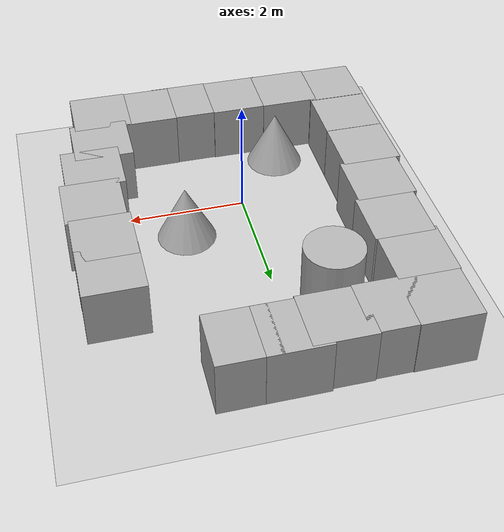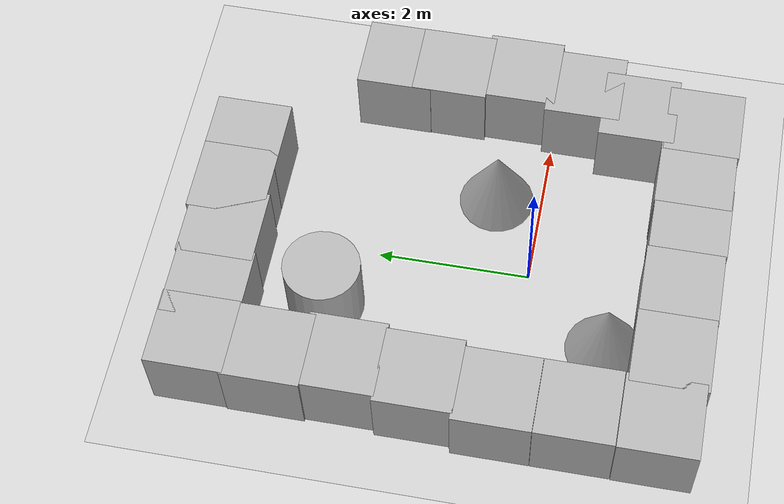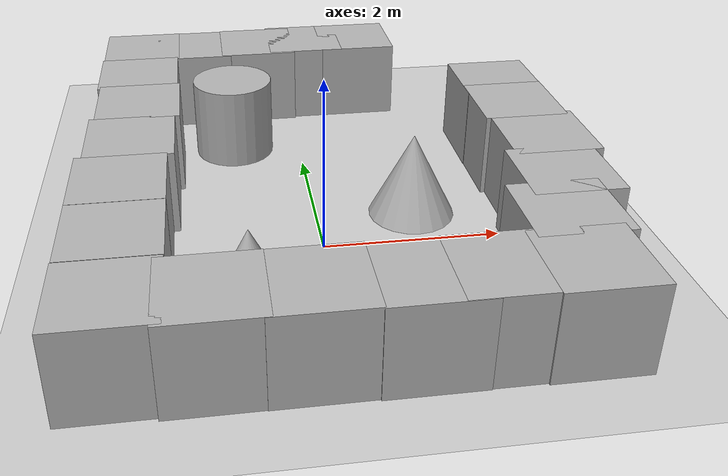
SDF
<sdf version='1.10'>
  <world name='empty'>
    <physics name='1ms' type='ignored'>
      <max_step_size>0.001</max_step_size>
      <real_time_factor>1</real_time_factor>
      <real_time_update_rate>1000</real_time_update_rate>
    </physics>
    <plugin name='gz::sim::systems::Physics' filename='gz-sim-physics-system'/>
    <plugin name='gz::sim::systems::UserCommands' filename='gz-sim-user-commands-system'/>
    <plugin name='gz::sim::systems::SceneBroadcaster' filename='gz-sim-scene-broadcaster-system'/>
    <plugin name='gz::sim::systems::Sensors' filename='gz-sim-sensors-system'>
      <render_engine>ogre2</render_engine>
    </plugin>
    <plugin name='gz::sim::systems::Contact' filename='gz-sim-contact-system'/>
    <gravity>0 0 -9.8000000000000007</gravity>
    <magnetic_field>5.5644999999999998e-06 2.2875799999999999e-05 -4.2388400000000002e-05</magnetic_field>
    <atmosphere type='adiabatic'/>
    <scene>
      <ambient>0.400000006 0.400000006 0.400000006 1</ambient>
      <background>0.699999988 0.699999988 0.699999988 1</background>
      <shadows>true</shadows>
    </scene>
    <model name='ground_plane'>
      <static>true</static>
      <link name='link'>
        <collision name='collision'>
          <geometry>
            <plane>
              <normal>0 0 1</normal>
              <size>100 100</size>
            </plane>
          </geometry>
          <surface>
            <friction>
              <ode/>
            </friction>
            <bounce/>
            <contact/>
          </surface>
        </collision>
        <visual name='visual'>
          <geometry>
            <plane>
              <normal>0 0 1</normal>
              <size>100 100</size>
            </plane>
          </geometry>
          <material>
            <ambient>0.800000012 0.800000012 0.800000012 1</ambient>
            <diffuse>0.800000012 0.800000012 0.800000012 1</diffuse>
            <specular>0.800000012 0.800000012 0.800000012 1</specular>
          </material>
        </visual>
        <pose>0 0 0 0 0 0</pose>
        <inertial>
          <pose>0 0 0 0 0 0</pose>
          <mass>1</mass>
          <inertia>
            <ixx>1</ixx>
            <ixy>0</ixy>
            <ixz>0</ixz>
            <iyy>1</iyy>
            <iyz>0</iyz>
            <izz>1</izz>
          </inertia>
        </inertial>
        <enable_wind>false</enable_wind>
      </link>
      <pose>0 0 0 0 0 0</pose>
      <self_collide>false</self_collide>
    </model>
    <model name='box'>
      <pose>2.5725061736939736 1.4457518876768178 0.50000041220665081 -9.6590048978576802e-07 4.7093544828262417e-08 2.375702925470449e-05</pose>
      <link name='box_link'>
        <inertial>
          <inertia>
            <ixx>0.16666</ixx>
            <ixy>0</ixy>
            <ixz>0</ixz>
            <iyy>0.16666</iyy>
            <iyz>0</iyz>
            <izz>0.16666</izz>
          </inertia>
          <mass>1</mass>
          <pose>0 0 0 0 0 0</pose>
        </inertial>
        <collision name='box_collision'>
          <geometry>
            <box>
              <size>1 1 1</size>
            </box>
          </geometry>
          <surface>
            <friction>
              <ode/>
            </friction>
            <bounce/>
            <contact/>
          </surface>
        </collision>
        <visual name='box_visual'>
          <geometry>
            <box>
              <size>1 1 1</size>
            </box>
          </geometry>
          <material>
            <ambient>0.300000012 0.300000012 0.300000012 1</ambient>
            <diffuse>0.699999988 0.699999988 0.699999988 1</diffuse>
            <specular>1 1 1 1</specular>
          </material>
        </visual>
        <pose>0 0 0 0 0 0</pose>
        <enable_wind>false</enable_wind>
      </link>
      <static>false</static>
      <self_collide>false</self_collide>
    </model>
    <model name='box_0'>
      <pose>2.6260531869661885 0.52042703384200117 0.50000691690781263 -1.5759303909476895e-05 -5.1008743345729587e-07 0.00010748436894233651</pose>
      <link name='box_link'>
        <inertial>
          <inertia>
            <ixx>0.16666</ixx>
            <ixy>0</ixy>
            <ixz>0</ixz>
            <iyy>0.16666</iyy>
            <iyz>0</iyz>
            <izz>0.16666</izz>
          </inertia>
          <mass>1</mass>
          <pose>0 0 0 0 0 0</pose>
        </inertial>
        <collision name='box_collision'>
          <geometry>
            <box>
              <size>1 1 1</size>
            </box>
          </geometry>
          <surface>
            <friction>
              <ode/>
            </friction>
            <bounce/>
            <contact/>
          </surface>
        </collision>
        <visual name='box_visual'>
          <geometry>
            <box>
              <size>1 1 1</size>
            </box>
          </geometry>
          <material>
            <ambient>0.300000012 0.300000012 0.300000012 1</ambient>
            <diffuse>0.699999988 0.699999988 0.699999988 1</diffuse>
            <specular>1 1 1 1</specular>
          </material>
        </visual>
        <pose>0 0 0 0 0 0</pose>
        <enable_wind>false</enable_wind>
      </link>
      <static>false</static>
      <self_collide>false</self_collide>
    </model>
    <model name='box_1'>
      <pose>2.5200556940294301 -0.3615242999807729 0.50000839409337294 -7.7652859270677727e-07 1.7941993697487484e-05 0.00010371675882942519</pose>
      <link name='box_link'>
        <inertial>
          <inertia>
            <ixx>0.16666</ixx>
            <ixy>0</ixy>
            <ixz>0</ixz>
            <iyy>0.16666</iyy>
            <iyz>0</iyz>
            <izz>0.16666</izz>
          </inertia>
          <mass>1</mass>
          <pose>0 0 0 0 0 0</pose>
        </inertial>
        <collision name='box_collision'>
          <geometry>
            <box>
              <size>1 1 1</size>
            </box>
          </geometry>
          <surface>
            <friction>
              <ode/>
            </friction>
            <bounce/>
            <contact/>
          </surface>
        </collision>
        <visual name='box_visual'>
          <geometry>
            <box>
              <size>1 1 1</size>
            </box>
          </geometry>
          <material>
            <ambient>0.300000012 0.300000012 0.300000012 1</ambient>
            <diffuse>0.699999988 0.699999988 0.699999988 1</diffuse>
            <specular>1 1 1 1</specular>
          </material>
        </visual>
        <pose>0 0 0 0 0 0</pose>
        <enable_wind>false</enable_wind>
      </link>
      <static>false</static>
      <self_collide>false</self_collide>
    </model>
    <model name='box_2'>
      <pose>2.2773920191922952 -1.1185019138005849 0.50000856466239274 6.8722299372051875e-06 1.1611866966727803e-05 0.00011499491917116678</pose>
      <link name='box_link'>
        <inertial>
          <inertia>
            <ixx>0.16666</ixx>
            <ixy>0</ixy>
            <ixz>0</ixz>
            <iyy>0.16666</iyy>
            <iyz>0</iyz>
            <izz>0.16666</izz>
          </inertia>
          <mass>1</mass>
          <pose>0 0 0 0 0 0</pose>
        </inertial>
        <collision name='box_collision'>
          <geometry>
            <box>
              <size>1 1 1</size>
            </box>
          </geometry>
          <surface>
            <friction>
              <ode/>
            </friction>
            <bounce/>
            <contact/>
          </surface>
        </collision>
        <visual name='box_visual'>
          <geometry>
            <box>
              <size>1 1 1</size>
            </box>
          </geometry>
          <material>
            <ambient>0.300000012 0.300000012 0.300000012 1</ambient>
            <diffuse>0.699999988 0.699999988 0.699999988 1</diffuse>
            <specular>1 1 1 1</specular>
          </material>
        </visual>
        <pose>0 0 0 0 0 0</pose>
        <enable_wind>false</enable_wind>
      </link>
      <static>false</static>
      <self_collide>false</self_collide>
    </model>
    <model name='box_3'>
      <pose>2.1834104070789682 -1.9891640523579786 0.50000406527766406 5.9395647081814685e-06 4.1468279116861331e-06 -0.00031246419759214716</pose>
      <link name='box_link'>
        <inertial>
          <inertia>
            <ixx>0.16666</ixx>
            <ixy>0</ixy>
            <ixz>0</ixz>
            <iyy>0.16666</iyy>
            <iyz>0</iyz>
            <izz>0.16666</izz>
          </inertia>
          <mass>1</mass>
          <pose>0 0 0 0 0 0</pose>
        </inertial>
        <collision name='box_collision'>
          <geometry>
            <box>
              <size>1 1 1</size>
            </box>
          </geometry>
          <surface>
            <friction>
              <ode/>
            </friction>
            <bounce/>
            <contact/>
          </surface>
        </collision>
        <visual name='box_visual'>
          <geometry>
            <box>
              <size>1 1 1</size>
            </box>
          </geometry>
          <material>
            <ambient>0.300000012 0.300000012 0.300000012 1</ambient>
            <diffuse>0.699999988 0.699999988 0.699999988 1</diffuse>
            <specular>1 1 1 1</specular>
          </material>
        </visual>
        <pose>0 0 0 0 0 0</pose>
        <enable_wind>false</enable_wind>
      </link>
      <static>false</static>
      <self_collide>false</self_collide>
    </model>
    <model name='box_4'>
      <pose>1.3606968608754286 -1.9692597207276987 0.5000072256813145 9.4142941014311968e-06 8.7431605659431716e-06 -0.00032354693211013487</pose>
      <link name='box_link'>
        <inertial>
          <inertia>
            <ixx>0.16666</ixx>
            <ixy>0</ixy>
            <ixz>0</ixz>
            <iyy>0.16666</iyy>
            <iyz>0</iyz>
            <izz>0.16666</izz>
          </inertia>
          <mass>1</mass>
          <pose>0 0 0 0 0 0</pose>
        </inertial>
        <collision name='box_collision'>
          <geometry>
            <box>
              <size>1 1 1</size>
            </box>
          </geometry>
          <surface>
            <friction>
              <ode/>
            </friction>
            <bounce/>
            <contact/>
          </surface>
        </collision>
        <visual name='box_visual'>
          <geometry>
            <box>
              <size>1 1 1</size>
            </box>
          </geometry>
          <material>
            <ambient>0.300000012 0.300000012 0.300000012 1</ambient>
            <diffuse>0.699999988 0.699999988 0.699999988 1</diffuse>
            <specular>1 1 1 1</specular>
          </material>
        </visual>
        <pose>0 0 0 0 0 0</pose>
        <enable_wind>false</enable_wind>
      </link>
      <static>false</static>
      <self_collide>false</self_collide>
    </model>
    <model name='box_5'>
      <pose>0.65857993496590972 -1.9781163437005425 0.50000502682797177 9.3544374374220265e-06 -1.0448413620453468e-06 -0.00032882375115435031</pose>
      <link name='box_link'>
        <inertial>
          <inertia>
            <ixx>0.16666</ixx>
            <ixy>0</ixy>
            <ixz>0</ixz>
            <iyy>0.16666</iyy>
            <iyz>0</iyz>
            <izz>0.16666</izz>
          </inertia>
          <mass>1</mass>
          <pose>0 0 0 0 0 0</pose>
        </inertial>
        <collision name='box_collision'>
          <geometry>
            <box>
              <size>1 1 1</size>
            </box>
          </geometry>
          <surface>
            <friction>
              <ode/>
            </friction>
            <bounce/>
            <contact/>
          </surface>
        </collision>
        <visual name='box_visual'>
          <geometry>
            <box>
              <size>1 1 1</size>
            </box>
          </geometry>
          <material>
            <ambient>0.300000012 0.300000012 0.300000012 1</ambient>
            <diffuse>0.699999988 0.699999988 0.699999988 1</diffuse>
            <specular>1 1 1 1</specular>
          </material>
        </visual>
        <pose>0 0 0 0 0 0</pose>
        <enable_wind>false</enable_wind>
      </link>
      <static>false</static>
      <self_collide>false</self_collide>
    </model>
    <model name='box_6'>
      <pose>-0.32888454800632394 -1.963442369561194 0.50000557814061386 9.3031063145685064e-07 -1.3032874548385367e-05 -0.00032940471113173476</pose>
      <link name='box_link'>
        <inertial>
          <inertia>
            <ixx>0.16666</ixx>
            <ixy>0</ixy>
            <ixz>0</ixz>
            <iyy>0.16666</iyy>
            <iyz>0</iyz>
            <izz>0.16666</izz>
          </inertia>
          <mass>1</mass>
          <pose>0 0 0 0 0 0</pose>
        </inertial>
        <collision name='box_collision'>
          <geometry>
            <box>
              <size>1 1 1</size>
            </box>
          </geometry>
          <surface>
            <friction>
              <ode/>
            </friction>
            <bounce/>
            <contact/>
          </surface>
        </collision>
        <visual name='box_visual'>
          <geometry>
            <box>
              <size>1 1 1</size>
            </box>
          </geometry>
          <material>
            <ambient>0.300000012 0.300000012 0.300000012 1</ambient>
            <diffuse>0.699999988 0.699999988 0.699999988 1</diffuse>
            <specular>1 1 1 1</specular>
          </material>
        </visual>
        <pose>0 0 0 0 0 0</pose>
        <enable_wind>false</enable_wind>
      </link>
      <static>false</static>
      <self_collide>false</self_collide>
    </model>
    <model name='box_7'>
      <pose>-1.2591382377311726 -1.9577899404905634 0.50000056888315436 5.7525306837494044e-07 -1.5193003018964189e-06 -5.0968927742486557e-05</pose>
      <link name='box_link'>
        <inertial>
          <inertia>
            <ixx>0.16666</ixx>
            <ixy>0</ixy>
            <ixz>0</ixz>
            <iyy>0.16666</iyy>
            <iyz>0</iyz>
            <izz>0.16666</izz>
          </inertia>
          <mass>1</mass>
          <pose>0 0 0 0 0 0</pose>
        </inertial>
        <collision name='box_collision'>
          <geometry>
            <box>
              <size>1 1 1</size>
            </box>
          </geometry>
          <surface>
            <friction>
              <ode/>
            </friction>
            <bounce/>
            <contact/>
          </surface>
        </collision>
        <visual name='box_visual'>
          <geometry>
            <box>
              <size>1 1 1</size>
            </box>
          </geometry>
          <material>
            <ambient>0.300000012 0.300000012 0.300000012 1</ambient>
            <diffuse>0.699999988 0.699999988 0.699999988 1</diffuse>
            <specular>1 1 1 1</specular>
          </material>
        </visual>
        <pose>0 0 0 0 0 0</pose>
        <enable_wind>false</enable_wind>
      </link>
      <static>false</static>
      <self_collide>false</self_collide>
    </model>
    <model name='box_8'>
      <pose>-2.1544199107008253 -1.9241583777303601 0.49999865564264334 -2.2978513481515827e-06 6.0027256529996969e-11 -5.2358995392473459e-05</pose>
      <link name='box_link'>
        <inertial>
          <inertia>
            <ixx>0.16666</ixx>
            <ixy>0</ixy>
            <ixz>0</ixz>
            <iyy>0.16666</iyy>
            <iyz>0</iyz>
            <izz>0.16666</izz>
          </inertia>
          <mass>1</mass>
          <pose>0 0 0 0 0 0</pose>
        </inertial>
        <collision name='box_collision'>
          <geometry>
            <box>
              <size>1 1 1</size>
            </box>
          </geometry>
          <surface>
            <friction>
              <ode/>
            </friction>
            <bounce/>
            <contact/>
          </surface>
        </collision>
        <visual name='box_visual'>
          <geometry>
            <box>
              <size>1 1 1</size>
            </box>
          </geometry>
          <material>
            <ambient>0.300000012 0.300000012 0.300000012 1</ambient>
            <diffuse>0.699999988 0.699999988 0.699999988 1</diffuse>
            <specular>1 1 1 1</specular>
          </material>
        </visual>
        <pose>0 0 0 0 0 0</pose>
        <enable_wind>false</enable_wind>
      </link>
      <static>false</static>
      <self_collide>false</self_collide>
    </model>
    <model name='box_9'>
      <pose>-2.1471344070070266 -0.91746415330642606 0.49999999990199806 6.2287739151293738e-22 9.3279666454713669e-22 -3.6315533669320137e-22</pose>
      <link name='box_link'>
        <inertial>
          <inertia>
            <ixx>0.16666</ixx>
            <ixy>0</ixy>
            <ixz>0</ixz>
            <iyy>0.16666</iyy>
            <iyz>0</iyz>
            <izz>0.16666</izz>
          </inertia>
          <mass>1</mass>
          <pose>0 0 0 0 0 0</pose>
        </inertial>
        <collision name='box_collision'>
          <geometry>
            <box>
              <size>1 1 1</size>
            </box>
          </geometry>
          <surface>
            <friction>
              <ode/>
            </friction>
            <bounce/>
            <contact/>
          </surface>
        </collision>
        <visual name='box_visual'>
          <geometry>
            <box>
              <size>1 1 1</size>
            </box>
          </geometry>
          <material>
            <ambient>0.300000012 0.300000012 0.300000012 1</ambient>
            <diffuse>0.699999988 0.699999988 0.699999988 1</diffuse>
            <specular>1 1 1 1</specular>
          </material>
        </visual>
        <pose>0 0 0 0 0 0</pose>
        <enable_wind>false</enable_wind>
      </link>
      <static>false</static>
      <self_collide>false</self_collide>
    </model>
    <model name='box_10'>
      <pose>-2.147134123043446 0.085875896342490696 0.49999999037455167 1.9913798982754106e-08 -9.8684334575779504e-10 -5.0676307528624321e-08</pose>
      <link name='box_link'>
        <inertial>
          <inertia>
            <ixx>0.16666</ixx>
            <ixy>0</ixy>
            <ixz>0</ixz>
            <iyy>0.16666</iyy>
            <iyz>0</iyz>
            <izz>0.16666</izz>
          </inertia>
          <mass>1</mass>
          <pose>0 0 0 0 0 0</pose>
        </inertial>
        <collision name='box_collision'>
          <geometry>
            <box>
              <size>1 1 1</size>
            </box>
          </geometry>
          <surface>
            <friction>
              <ode/>
            </friction>
            <bounce/>
            <contact/>
          </surface>
        </collision>
        <visual name='box_visual'>
          <geometry>
            <box>
              <size>1 1 1</size>
            </box>
          </geometry>
          <material>
            <ambient>0.300000012 0.300000012 0.300000012 1</ambient>
            <diffuse>0.699999988 0.699999988 0.699999988 1</diffuse>
            <specular>1 1 1 1</specular>
          </material>
        </visual>
        <pose>0 0 0 0 0 0</pose>
        <enable_wind>false</enable_wind>
      </link>
      <static>false</static>
      <self_collide>false</self_collide>
    </model>
    <model name='box_11'>
      <pose>-2.070547493442497 1.0583327874323296 0.49999999050946758 2.016723313395513e-08 -1.4938028272124538e-09 -6.2799956277480826e-08</pose>
      <link name='box_link'>
        <inertial>
          <inertia>
            <ixx>0.16666</ixx>
            <ixy>0</ixy>
            <ixz>0</ixz>
            <iyy>0.16666</iyy>
            <iyz>0</iyz>
            <izz>0.16666</izz>
          </inertia>
          <mass>1</mass>
          <pose>0 0 0 0 0 0</pose>
        </inertial>
        <collision name='box_collision'>
          <geometry>
            <box>
              <size>1 1 1</size>
            </box>
          </geometry>
          <surface>
            <friction>
              <ode/>
            </friction>
            <bounce/>
            <contact/>
          </surface>
        </collision>
        <visual name='box_visual'>
          <geometry>
            <box>
              <size>1 1 1</size>
            </box>
          </geometry>
          <material>
            <ambient>0.300000012 0.300000012 0.300000012 1</ambient>
            <diffuse>0.699999988 0.699999988 0.699999988 1</diffuse>
            <specular>1 1 1 1</specular>
          </material>
        </visual>
        <pose>0 0 0 0 0 0</pose>
        <enable_wind>false</enable_wind>
      </link>
      <static>false</static>
      <self_collide>false</self_collide>
    </model>
    <model name='box_12'>
      <pose>-2.0139773018908897 2.0327562274410464 0.49999999004851053 1.8656533957947081e-08 -1.309479012358304e-09 -5.5352899856172946e-08</pose>
      <link name='box_link'>
        <inertial>
          <inertia>
            <ixx>0.16666</ixx>
            <ixy>0</ixy>
            <ixz>0</ixz>
            <iyy>0.16666</iyy>
            <iyz>0</iyz>
            <izz>0.16666</izz>
          </inertia>
          <mass>1</mass>
          <pose>0 0 0 0 0 0</pose>
        </inertial>
        <collision name='box_collision'>
          <geometry>
            <box>
              <size>1 1 1</size>
            </box>
          </geometry>
          <surface>
            <friction>
              <ode/>
            </friction>
            <bounce/>
            <contact/>
          </surface>
        </collision>
        <visual name='box_visual'>
          <geometry>
            <box>
              <size>1 1 1</size>
            </box>
          </geometry>
          <material>
            <ambient>0.300000012 0.300000012 0.300000012 1</ambient>
            <diffuse>0.699999988 0.699999988 0.699999988 1</diffuse>
            <specular>1 1 1 1</specular>
          </material>
        </visual>
        <pose>0 0 0 0 0 0</pose>
        <enable_wind>false</enable_wind>
      </link>
      <static>false</static>
      <self_collide>false</self_collide>
    </model>
    <model name='box_13'>
      <pose>-2.0433758237514521 2.9510160586349907 0.49999999091838104 -1.9793348030520026e-08 1.6555843152834033e-09 -1.9511547912811254e-07</pose>
      <link name='box_link'>
        <inertial>
          <inertia>
            <ixx>0.16666</ixx>
            <ixy>0</ixy>
            <ixz>0</ixz>
            <iyy>0.16666</iyy>
            <iyz>0</iyz>
            <izz>0.16666</izz>
          </inertia>
          <mass>1</mass>
          <pose>0 0 0 0 0 0</pose>
        </inertial>
        <collision name='box_collision'>
          <geometry>
            <box>
              <size>1 1 1</size>
            </box>
          </geometry>
          <surface>
            <friction>
              <ode/>
            </friction>
            <bounce/>
            <contact/>
          </surface>
        </collision>
        <visual name='box_visual'>
          <geometry>
            <box>
              <size>1 1 1</size>
            </box>
          </geometry>
          <material>
            <ambient>0.300000012 0.300000012 0.300000012 1</ambient>
            <diffuse>0.699999988 0.699999988 0.699999988 1</diffuse>
            <specular>1 1 1 1</specular>
          </material>
        </visual>
        <pose>0 0 0 0 0 0</pose>
        <enable_wind>false</enable_wind>
      </link>
      <static>false</static>
      <self_collide>false</self_collide>
    </model>
    <model name='box_14'>
      <pose>-2.0263113094226552 3.9083724893584715 0.49999999878055817 -3.38919244280112e-08 -3.5550460512604327e-08 -2.4507583471366829e-07</pose>
      <link name='box_link'>
        <inertial>
          <inertia>
            <ixx>0.16666</ixx>
            <ixy>0</ixy>
            <ixz>0</ixz>
            <iyy>0.16666</iyy>
            <iyz>0</iyz>
            <izz>0.16666</izz>
          </inertia>
          <mass>1</mass>
          <pose>0 0 0 0 0 0</pose>
        </inertial>
        <collision name='box_collision'>
          <geometry>
            <box>
              <size>1 1 1</size>
            </box>
          </geometry>
          <surface>
            <friction>
              <ode/>
            </friction>
            <bounce/>
            <contact/>
          </surface>
        </collision>
        <visual name='box_visual'>
          <geometry>
            <box>
              <size>1 1 1</size>
            </box>
          </geometry>
          <material>
            <ambient>0.300000012 0.300000012 0.300000012 1</ambient>
            <diffuse>0.699999988 0.699999988 0.699999988 1</diffuse>
            <specular>1 1 1 1</specular>
          </material>
        </visual>
        <pose>0 0 0 0 0 0</pose>
        <enable_wind>false</enable_wind>
      </link>
      <static>false</static>
      <self_collide>false</self_collide>
    </model>
    <model name='box_15'>
      <pose>-1.3139484617403294 3.8971533278197206 0.49999999848265342 -3.2574035780263715e-08 -3.5595536600608373e-08 -3.924829576081235e-07</pose>
      <link name='box_link'>
        <inertial>
          <inertia>
            <ixx>0.16666</ixx>
            <ixy>0</ixy>
            <ixz>0</ixz>
            <iyy>0.16666</iyy>
            <iyz>0</iyz>
            <izz>0.16666</izz>
          </inertia>
          <mass>1</mass>
          <pose>0 0 0 0 0 0</pose>
        </inertial>
        <collision name='box_collision'>
          <geometry>
            <box>
              <size>1 1 1</size>
            </box>
          </geometry>
          <surface>
            <friction>
              <ode/>
            </friction>
            <bounce/>
            <contact/>
          </surface>
        </collision>
        <visual name='box_visual'>
          <geometry>
            <box>
              <size>1 1 1</size>
            </box>
          </geometry>
          <material>
            <ambient>0.300000012 0.300000012 0.300000012 1</ambient>
            <diffuse>0.699999988 0.699999988 0.699999988 1</diffuse>
            <specular>1 1 1 1</specular>
          </material>
        </visual>
        <pose>0 0 0 0 0 0</pose>
        <enable_wind>false</enable_wind>
      </link>
      <static>false</static>
      <self_collide>false</self_collide>
    </model>
    <model name='box_16'>
      <pose>-0.43378135247213234 3.9180715626095708 0.49999999186393324 -2.7554805608334699e-10 1.1259738723398813e-08 -7.8713140962671612e-09</pose>
      <link name='box_link'>
        <inertial>
          <inertia>
            <ixx>0.16666</ixx>
            <ixy>0</ixy>
            <ixz>0</ixz>
            <iyy>0.16666</iyy>
            <iyz>0</iyz>
            <izz>0.16666</izz>
          </inertia>
          <mass>1</mass>
          <pose>0 0 0 0 0 0</pose>
        </inertial>
        <collision name='box_collision'>
          <geometry>
            <box>
              <size>1 1 1</size>
            </box>
          </geometry>
          <surface>
            <friction>
              <ode/>
            </friction>
            <bounce/>
            <contact/>
          </surface>
        </collision>
        <visual name='box_visual'>
          <geometry>
            <box>
              <size>1 1 1</size>
            </box>
          </geometry>
          <material>
            <ambient>0.300000012 0.300000012 0.300000012 1</ambient>
            <diffuse>0.699999988 0.699999988 0.699999988 1</diffuse>
            <specular>1 1 1 1</specular>
          </material>
        </visual>
        <pose>0 0 0 0 0 0</pose>
        <enable_wind>false</enable_wind>
      </link>
      <static>false</static>
      <self_collide>false</self_collide>
    </model>
    <model name='box_17'>
      <pose>0.23682256356889031 3.9567496021243453 0.49999999057246997 -1.6949852080971079e-09 2.011669690240678e-08 -6.8437568361226913e-09</pose>
      <link name='box_link'>
        <inertial>
          <inertia>
            <ixx>0.16666</ixx>
            <ixy>0</ixy>
            <ixz>0</ixz>
            <iyy>0.16666</iyy>
            <iyz>0</iyz>
            <izz>0.16666</izz>
          </inertia>
          <mass>1</mass>
          <pose>0 0 0 0 0 0</pose>
        </inertial>
        <collision name='box_collision'>
          <geometry>
            <box>
              <size>1 1 1</size>
            </box>
          </geometry>
          <surface>
            <friction>
              <ode/>
            </friction>
            <bounce/>
            <contact/>
          </surface>
        </collision>
        <visual name='box_visual'>
          <geometry>
            <box>
              <size>1 1 1</size>
            </box>
          </geometry>
          <material>
            <ambient>0.300000012 0.300000012 0.300000012 1</ambient>
            <diffuse>0.699999988 0.699999988 0.699999988 1</diffuse>
            <specular>1 1 1 1</specular>
          </material>
        </visual>
        <pose>0 0 0 0 0 0</pose>
        <enable_wind>false</enable_wind>
      </link>
      <static>false</static>
      <self_collide>false</self_collide>
    </model>
    <model name='box_18'>
      <pose>0.96914261978054228 3.9556166108901119 0.49999999034940729 -8.4666843608580265e-10 1.9890701705222549e-08 -2.7213058714134775e-09</pose>
      <link name='box_link'>
        <inertial>
          <inertia>
            <ixx>0.16666</ixx>
            <ixy>0</ixy>
            <ixz>0</ixz>
            <iyy>0.16666</iyy>
            <iyz>0</iyz>
            <izz>0.16666</izz>
          </inertia>
          <mass>1</mass>
          <pose>0 0 0 0 0 0</pose>
        </inertial>
        <collision name='box_collision'>
          <geometry>
            <box>
              <size>1 1 1</size>
            </box>
          </geometry>
          <surface>
            <friction>
              <ode/>
            </friction>
            <bounce/>
            <contact/>
          </surface>
        </collision>
        <visual name='box_visual'>
          <geometry>
            <box>
              <size>1 1 1</size>
            </box>
          </geometry>
          <material>
            <ambient>0.300000012 0.300000012 0.300000012 1</ambient>
            <diffuse>0.699999988 0.699999988 0.699999988 1</diffuse>
            <specular>1 1 1 1</specular>
          </material>
        </visual>
        <pose>0 0 0 0 0 0</pose>
        <enable_wind>false</enable_wind>
      </link>
      <static>false</static>
      <self_collide>false</self_collide>
    </model>
    <model name='box_19'>
      <pose>2.566985872270136 2.1938419087205658 0.49999767030425896 -3.1828300411939216e-08 -4.5439893753695699e-06 1.9806265166213161e-05</pose>
      <link name='box_link'>
        <inertial>
          <inertia>
            <ixx>0.16666</ixx>
            <ixy>0</ixy>
            <ixz>0</ixz>
            <iyy>0.16666</iyy>
            <iyz>0</iyz>
            <izz>0.16666</izz>
          </inertia>
          <mass>1</mass>
          <pose>0 0 0 0 0 0</pose>
        </inertial>
        <collision name='box_collision'>
          <geometry>
            <box>
              <size>1 1 1</size>
            </box>
          </geometry>
          <surface>
            <friction>
              <ode/>
            </friction>
            <bounce/>
            <contact/>
          </surface>
        </collision>
        <visual name='box_visual'>
          <geometry>
            <box>
              <size>1 1 1</size>
            </box>
          </geometry>
          <material>
            <ambient>0.300000012 0.300000012 0.300000012 1</ambient>
            <diffuse>0.699999988 0.699999988 0.699999988 1</diffuse>
            <specular>1 1 1 1</specular>
          </material>
        </visual>
        <pose>0 0 0 0 0 0</pose>
        <enable_wind>false</enable_wind>
      </link>
      <static>false</static>
      <self_collide>false</self_collide>
    </model>
    <model name='cylinder'>
      <pose>-0.84541108868717485 2.5445453337626529 0.49999942638036005 2.7586768059845349e-19 2.2483380501764029e-20 -5.1992273689901986e-21</pose>
      <link name='cylinder_link'>
        <inertial>
          <inertia>
            <ixx>0.14580000000000001</ixx>
            <ixy>0</ixy>
            <ixz>0</ixz>
            <iyy>0.14580000000000001</iyy>
            <iyz>0</iyz>
            <izz>0.125</izz>
          </inertia>
          <mass>1</mass>
          <pose>0 0 0 0 0 0</pose>
        </inertial>
        <collision name='cylinder_collision'>
          <geometry>
            <cylinder>
              <radius>0.5</radius>
              <length>1</length>
            </cylinder>
          </geometry>
          <surface>
            <friction>
              <ode/>
            </friction>
            <bounce/>
            <contact/>
          </surface>
        </collision>
        <visual name='cylinder_visual'>
          <geometry>
            <cylinder>
              <radius>0.5</radius>
              <length>1</length>
            </cylinder>
          </geometry>
          <material>
            <ambient>0.300000012 0.300000012 0.300000012 1</ambient>
            <diffuse>0.699999988 0.699999988 0.699999988 1</diffuse>
            <specular>1 1 1 1</specular>
          </material>
        </visual>
        <pose>0 0 0 0 0 0</pose>
        <enable_wind>false</enable_wind>
      </link>
      <static>false</static>
      <self_collide>false</self_collide>
    </model>
    <model name='cone'>
      <pose>-0.8779575787052758 -1.1114156195063789 0.50000010143904838 1.4921518496956896e-06 -2.9237936899167342e-06 -0.00035496184323605254</pose>
      <link name='cone_link'>
        <inertial>
          <inertia>
            <ixx>0.074999999999999997</ixx>
            <ixy>0</ixy>
            <ixz>0</ixz>
            <iyy>0.074999999999999997</iyy>
            <iyz>0</iyz>
            <izz>0.074999999999999997</izz>
          </inertia>
          <mass>1</mass>
          <pose>0 0 0 0 0 0</pose>
        </inertial>
        <collision name='cone_collision'>
          <geometry>
            <cone>
              <radius>0.5</radius>
              <length>1</length>
            </cone>
          </geometry>
          <surface>
            <friction>
              <ode/>
            </friction>
            <bounce/>
            <contact/>
          </surface>
        </collision>
        <visual name='cone_visual'>
          <geometry>
            <cone>
              <radius>0.5</radius>
              <length>1</length>
            </cone>
          </geometry>
          <material>
            <ambient>0.300000012 0.300000012 0.300000012 1</ambient>
            <diffuse>0.699999988 0.699999988 0.699999988 1</diffuse>
            <specular>1 1 1 1</specular>
          </material>
        </visual>
        <pose>0 0 0 0 0 0</pose>
        <enable_wind>false</enable_wind>
      </link>
      <static>false</static>
      <self_collide>false</self_collide>
    </model>
    <model name='cone_0'>
      <pose>1.1236166594163595 0.61082093315925245 0.49999999993296756 5.254931119316858e-17 -7.7132841033999823e-10 6.969765996526587e-23</pose>
      <link name='cone_link'>
        <inertial>
          <inertia>
            <ixx>0.074999999999999997</ixx>
            <ixy>0</ixy>
            <ixz>0</ixz>
            <iyy>0.074999999999999997</iyy>
            <iyz>0</iyz>
            <izz>0.074999999999999997</izz>
          </inertia>
          <mass>1</mass>
          <pose>0 0 0 0 0 0</pose>
        </inertial>
        <collision name='cone_collision'>
          <geometry>
            <cone>
              <radius>0.5</radius>
              <length>1</length>
            </cone>
          </geometry>
          <surface>
            <friction>
              <ode/>
            </friction>
            <bounce/>
            <contact/>
          </surface>
        </collision>
        <visual name='cone_visual'>
          <geometry>
            <cone>
              <radius>0.5</radius>
              <length>1</length>
            </cone>
          </geometry>
          <material>
            <ambient>0.300000012 0.300000012 0.300000012 1</ambient>
            <diffuse>0.699999988 0.699999988 0.699999988 1</diffuse>
            <specular>1 1 1 1</specular>
          </material>
        </visual>
        <pose>0 0 0 0 0 0</pose>
        <enable_wind>false</enable_wind>
      </link>
      <static>false</static>
      <self_collide>false</self_collide>
    </model>
    <light name='sun' type='directional'>
      <pose>0 0 10 0 0 0</pose>
      <cast_shadows>true</cast_shadows>
      <intensity>1</intensity>
      <direction>-0.5 0.10000000000000001 -0.90000000000000002</direction>
      <diffuse>0.800000012 0.800000012 0.800000012 1</diffuse>
      <specular>0.200000003 0.200000003 0.200000003 1</specular>
      <attenuation>
        <range>1000</range>
        <linear>0.01</linear>
        <constant>0.90000000000000002</constant>
        <quadratic>0.001</quadratic>
      </attenuation>
      <spot>
        <inner_angle>0</inner_angle>
        <outer_angle>0</outer_angle>
        <falloff>0</falloff>
      </spot>
    </light>
  </world>
</sdf>
